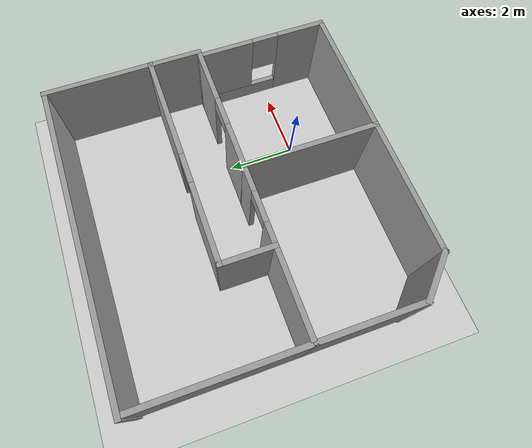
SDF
<sdf version="1.7">
 <world name="default">
  <light name="sun" type="directional">
   <pose>0 0 10 0 -0 0</pose>
   <diffuse>0.8 0.8 0.8 1</diffuse>
   <specular>0.2 0.2 0.2 1</specular>
   <attenuation>
    <range>1000</range>
    <constant>0.9</constant>
    <linear>0.01</linear>
    <quadratic>0.001</quadratic>
   </attenuation>
   <direction>-0.5 0.1 -0.9</direction>
   <spot><inner_angle>0</inner_angle><outer_angle>0</outer_angle><falloff>0</falloff></spot>
  </light>
  <model name="ground_plane">
   <static>1</static>
   <link name="link">
    <collision name="collision">
     <geometry><plane><normal>0 0 1</normal><size>100 100</size></plane></geometry>
     <surface>
      <contact><collide_bitmask>65535</collide_bitmask></contact>
      <friction><ode><mu>100</mu><mu2>50</mu2></ode></friction>
     </surface>
    </collision>
    <visual name="visual">
     <cast_shadows>0</cast_shadows>
     <geometry><plane><normal>0 0 1</normal><size>100 100</size></plane></geometry>
     <material>
      <script><uri>file://media/materials/scripts/gazebo.material</uri><name>Gazebo/Grey</name></script>
     </material>
    </visual>
   </link>
  </model>
  <gravity>0 0 -9.8</gravity>
  <magnetic_field>6e-06 2.3e-05 -4.2e-05</magnetic_field>
  <atmosphere type="adiabatic"/>
  <physics type="ode">
   <max_step_size>0.001</max_step_size>
   <real_time_factor>1</real_time_factor>
   <real_time_update_rate>1000</real_time_update_rate>
  </physics>
  <scene><ambient>0.4 0.4 0.4 1</ambient><background>0.7 0.7 0.7 1</background><shadows>1</shadows></scene>
  <audio><device>default</device></audio>
  <spherical_coordinates>
   <surface_model>EARTH_WGS84</surface_model>
   <latitude_deg>0</latitude_deg>
   <longitude_deg>0</longitude_deg>
   <elevation>0</elevation>
   <heading_deg>0</heading_deg>
  </spherical_coordinates>
  <model name="howa">
   <pose>-1.66025 2.43806 0 0 -0 0</pose>
   <link name="Wall_11">
    <pose>-0.752472 -0.356615 0 0 -0 3.14159</pose>
    <visual name="Wall_11_Visual_0">
     <pose>-0.814555 0 1.25 0 -0 0</pose>
     <geometry><box><size>0.870889 0.15 2.5</size></box></geometry>
     <material>
      <script><uri>file://media/materials/scripts/gazebo.material</uri><name>Gazebo/Grey</name></script>
      <ambient>1 1 1 1</ambient>
     </material>
     <meta><layer>0</layer></meta>
    </visual>
    <collision name="Wall_11_Collision_0">
     <geometry><box><size>0.870889 0.15 2.5</size></box></geometry>
     <pose>-0.814555 0 1.25 0 -0 0</pose>
    </collision>
    <visual name="Wall_11_Visual_1">
     <pose>0.885445 0 1.25 0 -0 0</pose>
     <geometry><box><size>0.729111 0.15 2.5</size></box></geometry>
     <material>
      <script><uri>file://media/materials/scripts/gazebo.material</uri><name>Gazebo/Grey</name></script>
      <ambient>1 1 1 1</ambient>
     </material>
     <meta><layer>0</layer></meta>
    </visual>
    <collision name="Wall_11_Collision_1">
     <geometry><box><size>0.729111 0.15 2.5</size></box></geometry>
     <pose>0.885445 0 1.25 0 -0 0</pose>
    </collision>
    <visual name="Wall_11_Visual_2">
     <pose>0.070889 0 2.25 0 -0 0</pose>
     <geometry><box><size>0.9 0.15 0.5</size></box></geometry>
     <material>
      <script><uri>file://media/materials/scripts/gazebo.material</uri><name>Gazebo/Grey</name></script>
      <ambient>1 1 1 1</ambient>
     </material>
     <meta><layer>0</layer></meta>
    </visual>
    <collision name="Wall_11_Collision_2">
     <geometry><box><size>0.9 0.15 0.5</size></box></geometry>
     <pose>0.070889 0 2.25 0 -0 0</pose>
    </collision>
   </link>
   <link name="Wall_12">
    <collision name="Wall_12_Collision">
     <geometry><box><size>1.618 0.15 2.5</size></box></geometry>
     <pose>0 0 1.25 0 -0 0</pose>
    </collision>
    <visual name="Wall_12_Visual">
     <pose>0 0 1.25 0 -0 0</pose>
     <geometry><box><size>1.618 0.15 2.5</size></box></geometry>
     <material>
      <script><uri>file://media/materials/scripts/gazebo.material</uri><name>Gazebo/Grey</name></script>
      <ambient>1 1 1 1</ambient>
     </material>
     <meta><layer>0</layer></meta>
    </visual>
    <pose>-1.92747 0.377383 0 0 -0 1.5708</pose>
   </link>
   <link name="Wall_14">
    <pose>1.25247 1.11138 0 0 -0 0</pose>
    <visual name="Wall_14_Visual_0">
     <pose>-2.05434 0 1.25 0 -0 0</pose>
     <geometry><box><size>2.39132 0.15 2.5</size></box></geometry>
     <material>
      <script><uri>file://media/materials/scripts/gazebo.material</uri><name>Gazebo/Grey</name></script>
      <ambient>1 1 1 1</ambient>
     </material>
     <meta><layer>0</layer></meta>
    </visual>
    <collision name="Wall_14_Collision_0">
     <geometry><box><size>2.39132 0.15 2.5</size></box></geometry>
     <pose>-2.05434 0 1.25 0 -0 0</pose>
    </collision>
    <visual name="Wall_14_Visual_1">
     <pose>1.64566 0 1.25 0 -0 0</pose>
     <geometry><box><size>3.20868 0.15 2.5</size></box></geometry>
     <material>
      <script><uri>file://media/materials/scripts/gazebo.material</uri><name>Gazebo/Grey</name></script>
      <ambient>1 1 1 1</ambient>
     </material>
     <meta><layer>0</layer></meta>
    </visual>
    <collision name="Wall_14_Collision_1">
     <geometry><box><size>3.20868 0.15 2.5</size></box></geometry>
     <pose>1.64566 0 1.25 0 -0 0</pose>
    </collision>
    <visual name="Wall_14_Visual_2">
     <pose>-0.408682 0 2.25 0 -0 0</pose>
     <geometry><box><size>0.9 0.15 0.5</size></box></geometry>
     <material>
      <script><uri>file://media/materials/scripts/gazebo.material</uri><name>Gazebo/Grey</name></script>
      <ambient>1 1 1 1</ambient>
     </material>
     <meta><layer>0</layer></meta>
    </visual>
    <collision name="Wall_14_Collision_2">
     <geometry><box><size>0.9 0.15 0.5</size></box></geometry>
     <pose>-0.408682 0 2.25 0 -0 0</pose>
    </collision>
   </link>
   <link name="Wall_15">
    <collision name="Wall_15_Collision">
     <geometry><box><size>1.618 0.15 2.5</size></box></geometry>
     <pose>0 0 1.25 0 -0 0</pose>
    </collision>
    <visual name="Wall_15_Visual">
     <pose>0 0 1.25 0 -0 0</pose>
     <geometry><box><size>1.618 0.15 2.5</size></box></geometry>
     <material>
      <script><uri>file://media/materials/scripts/gazebo.material</uri><name>Gazebo/Grey</name></script>
      <ambient>1 1 1 1</ambient>
     </material>
     <meta><layer>0</layer></meta>
    </visual>
    <pose>4.42253 0.377383 0 0 -0 -1.5708</pose>
   </link>
   <link name="Wall_17">
    <collision name="Wall_17_Collision">
     <geometry><box><size>4 0.15 2.5</size></box></geometry>
     <pose>0 0 1.25 0 -0 0</pose>
    </collision>
    <visual name="Wall_17_Visual">
     <pose>0 0 1.25 0 -0 0</pose>
     <geometry><box><size>4 0.15 2.5</size></box></geometry>
     <material>
      <script><uri>file://media/materials/scripts/gazebo.material</uri><name>Gazebo/Grey</name></script>
      <ambient>1 1 1 1</ambient>
     </material>
     <meta><layer>0</layer></meta>
    </visual>
    <pose>-1.50247 -4.20662 0 0 -0 3.14159</pose>
   </link>
   <link name="Wall_18">
    <collision name="Wall_18_Collision">
     <geometry><box><size>1.5 0.15 2.5</size></box></geometry>
     <pose>0 0 1.25 0 -0 0</pose>
    </collision>
    <visual name="Wall_18_Visual">
     <pose>0 0 1.25 0 -0 0</pose>
     <geometry><box><size>1.5 0.15 2.5</size></box></geometry>
     <material>
      <script><uri>file://media/materials/scripts/gazebo.material</uri><name>Gazebo/Grey</name></script>
      <ambient>1 1 1 1</ambient>
     </material>
     <meta><layer>0</layer></meta>
    </visual>
    <pose>-3.90477 -3.72932 0 0 -0 2.35619</pose>
   </link>
   <link name="Wall_2">
    <collision name="Wall_2_Collision">
     <geometry><box><size>4 0.15 2.5</size></box></geometry>
     <pose>0 0 1.25 0 -0 0</pose>
    </collision>
    <visual name="Wall_2_Visual">
     <pose>0 0 1.25 0 -0 0</pose>
     <geometry><box><size>4 0.15 2.5</size></box></geometry>
     <material>
      <script><uri>file://media/materials/scripts/gazebo.material</uri><name>Gazebo/Grey</name></script>
      <ambient>1 1 1 1</ambient>
     </material>
     <meta><layer>0</layer></meta>
    </visual>
    <pose>2.34753 -4.20662 0 0 -0 0</pose>
   </link>
   <link name="Wall_26">
    <collision name="Wall_26_Collision">
     <geometry><box><size>2.5 0.15 2.5</size></box></geometry>
     <pose>0 0 1.25 0 -0 0</pose>
    </collision>
    <visual name="Wall_26_Visual">
     <pose>0 0 1.25 0 -0 0</pose>
     <geometry><box><size>2.5 0.15 2.5</size></box></geometry>
     <material>
      <script><uri>file://media/materials/scripts/gazebo.material</uri><name>Gazebo/Grey</name></script>
      <ambient>1 1 1 1</ambient>
     </material>
     <meta><layer>0</layer></meta>
    </visual>
    <pose>-3.10247 -0.356615 0 0 -0 3.14159</pose>
   </link>
   <link name="Wall_28">
    <collision name="Wall_28_Collision">
     <geometry><box><size>3 0.15 2.5</size></box></geometry>
     <pose>0 0 1.25 0 -0 0</pose>
    </collision>
    <visual name="Wall_28_Visual">
     <pose>0 0 1.25 0 -0 0</pose>
     <geometry><box><size>3 0.15 2.5</size></box></geometry>
     <material>
      <script><uri>file://media/materials/scripts/gazebo.material</uri><name>Gazebo/Grey</name></script>
      <ambient>1 1 1 1</ambient>
     </material>
     <meta><layer>0</layer></meta>
    </visual>
    <pose>-4.38207 -1.82702 0 0 -0 1.5708</pose>
   </link>
   <link name="Wall_32">
    <collision name="Wall_32_Collision">
     <geometry><box><size>3.2763 0.15 2.5</size></box></geometry>
     <pose>0 0 1.25 0 -0 0</pose>
    </collision>
    <visual name="Wall_32_Visual">
     <pose>0 0 1.25 0 -0 0</pose>
     <geometry><box><size>3.2763 0.15 2.5</size></box></geometry>
     <material>
      <script><uri>file://media/materials/scripts/gazebo.material</uri><name>Gazebo/Grey</name></script>
      <ambient>1 1 1 1</ambient>
     </material>
     <meta><layer>0</layer></meta>
    </visual>
    <pose>4.42253 2.67453 0 0 -0 1.5708</pose>
   </link>
   <link name="Wall_33">
    <collision name="Wall_33_Collision">
     <geometry><box><size>9 0.15 2.5</size></box></geometry>
     <pose>0 0 1.25 0 -0 0</pose>
    </collision>
    <visual name="Wall_33_Visual">
     <pose>0 0 1.25 0 -0 0</pose>
     <geometry><box><size>9 0.15 2.5</size></box></geometry>
     <material>
      <script><uri>file://media/materials/scripts/gazebo.material</uri><name>Gazebo/Grey</name></script>
      <ambient>1 1 1 1</ambient>
     </material>
     <meta><layer>0</layer></meta>
    </visual>
    <pose>-0.002472 4.22453 0 0 -0 3.14159</pose>
   </link>
   <link name="Wall_35">
    <collision name="Wall_35_Collision">
     <geometry><box><size>4.75 0.15 2.5</size></box></geometry>
     <pose>0 0 1.25 0 -0 0</pose>
    </collision>
    <visual name="Wall_35_Visual">
     <pose>0 0 1.25 0 -0 0</pose>
     <geometry><box><size>4.75 0.15 2.5</size></box></geometry>
     <material>
      <script><uri>file://media/materials/scripts/gazebo.material</uri><name>Gazebo/Grey</name></script>
      <ambient>1 1 1 1</ambient>
     </material>
     <meta><layer>0</layer></meta>
    </visual>
    <pose>-4.38207 1.89798 0 0 -0 1.5708</pose>
   </link>
   <link name="Wall_7">
    <pose>4.27253 -2.28161 0 0 -0 1.5708</pose>
    <visual name="Wall_7_Visual_0">
     <pose>-1.25653 0 1.25 0 -0 0</pose>
     <geometry><box><size>1.48694 0.15 2.5</size></box></geometry>
     <material>
      <script><uri>file://media/materials/scripts/gazebo.material</uri><name>Gazebo/Grey</name></script>
      <ambient>1 1 1 1</ambient>
     </material>
     <meta><layer>0</layer></meta>
    </visual>
    <collision name="Wall_7_Collision_0">
     <geometry><box><size>1.48694 0.15 2.5</size></box></geometry>
     <pose>-1.25653 0 1.25 0 -0 0</pose>
    </collision>
    <visual name="Wall_7_Visual_1">
     <pose>0.74347 0 0.25 0 -0 0</pose>
     <geometry><box><size>2.51306 0.15 0.5</size></box></geometry>
     <material>
      <script><uri>file://media/materials/scripts/gazebo.material</uri><name>Gazebo/Grey</name></script>
      <ambient>1 1 1 1</ambient>
     </material>
     <meta><layer>0</layer></meta>
    </visual>
    <collision name="Wall_7_Collision_1">
     <geometry><box><size>2.51306 0.15 0.5</size></box></geometry>
     <pose>0.74347 0 0.25 0 -0 0</pose>
    </collision>
    <visual name="Wall_7_Visual_2">
     <pose>1.14347 0 1.5 0 -0 0</pose>
     <geometry><box><size>1.71306 0.15 2</size></box></geometry>
     <material>
      <script><uri>file://media/materials/scripts/gazebo.material</uri><name>Gazebo/Grey</name></script>
      <ambient>1 1 1 1</ambient>
     </material>
     <meta><layer>0</layer></meta>
    </visual>
    <collision name="Wall_7_Collision_2">
     <geometry><box><size>1.71306 0.15 2</size></box></geometry>
     <pose>1.14347 0 1.5 0 -0 0</pose>
    </collision>
    <visual name="Wall_7_Visual_3">
     <pose>-0.11306 0 1.9 0 -0 0</pose>
     <geometry><box><size>0.8 0.15 1.2</size></box></geometry>
     <material>
      <script><uri>file://media/materials/scripts/gazebo.material</uri><name>Gazebo/Grey</name></script>
      <ambient>1 1 1 1</ambient>
     </material>
     <meta><layer>0</layer></meta>
    </visual>
    <collision name="Wall_7_Collision_3">
     <geometry><box><size>0.8 0.15 1.2</size></box></geometry>
     <pose>-0.11306 0 1.9 0 -0 0</pose>
    </collision>
   </link>
   <link name="Wall_8">
    <pose>2.34753 -0.356615 0 0 -0 3.14159</pose>
    <visual name="Wall_8_Visual_0">
     <pose>-1.15973 0 1.25 0 -0 0</pose>
     <geometry><box><size>1.68054 0.15 2.5</size></box></geometry>
     <material>
      <script><uri>file://media/materials/scripts/gazebo.material</uri><name>Gazebo/Grey</name></script>
      <ambient>1 1 1 1</ambient>
     </material>
     <meta><layer>0</layer></meta>
    </visual>
    <collision name="Wall_8_Collision_0">
     <geometry><box><size>1.68054 0.15 2.5</size></box></geometry>
     <pose>-1.15973 0 1.25 0 -0 0</pose>
    </collision>
    <visual name="Wall_8_Visual_1">
     <pose>1.29027 0 1.25 0 -0 0</pose>
     <geometry><box><size>1.41946 0.15 2.5</size></box></geometry>
     <material>
      <script><uri>file://media/materials/scripts/gazebo.material</uri><name>Gazebo/Grey</name></script>
      <ambient>1 1 1 1</ambient>
     </material>
     <meta><layer>0</layer></meta>
    </visual>
    <collision name="Wall_8_Collision_1">
     <geometry><box><size>1.41946 0.15 2.5</size></box></geometry>
     <pose>1.29027 0 1.25 0 -0 0</pose>
    </collision>
    <visual name="Wall_8_Visual_2">
     <pose>0.130544 0 2.25 0 -0 0</pose>
     <geometry><box><size>0.9 0.15 0.5</size></box></geometry>
     <material>
      <script><uri>file://media/materials/scripts/gazebo.material</uri><name>Gazebo/Grey</name></script>
      <ambient>1 1 1 1</ambient>
     </material>
     <meta><layer>0</layer></meta>
    </visual>
    <collision name="Wall_8_Collision_2">
     <geometry><box><size>0.9 0.15 0.5</size></box></geometry>
     <pose>0.130544 0 2.25 0 -0 0</pose>
    </collision>
   </link>
   <link name="Wall_9">
    <collision name="Wall_9_Collision">
     <geometry><box><size>4 0.15 2.5</size></box></geometry>
     <pose>0 0 1.25 0 -0 0</pose>
    </collision>
    <visual name="Wall_9_Visual">
     <pose>0 0 1.25 0 -0 0</pose>
     <geometry><box><size>4 0.15 2.5</size></box></geometry>
     <material>
      <script><uri>file://media/materials/scripts/gazebo.material</uri><name>Gazebo/Grey</name></script>
      <ambient>1 1 1 1</ambient>
     </material>
     <meta><layer>0</layer></meta>
    </visual>
    <pose>0.422528 -2.28161 0 0 -0 -1.5708</pose>
   </link>
   <static>1</static>
  </model>
 </world>
</sdf>
